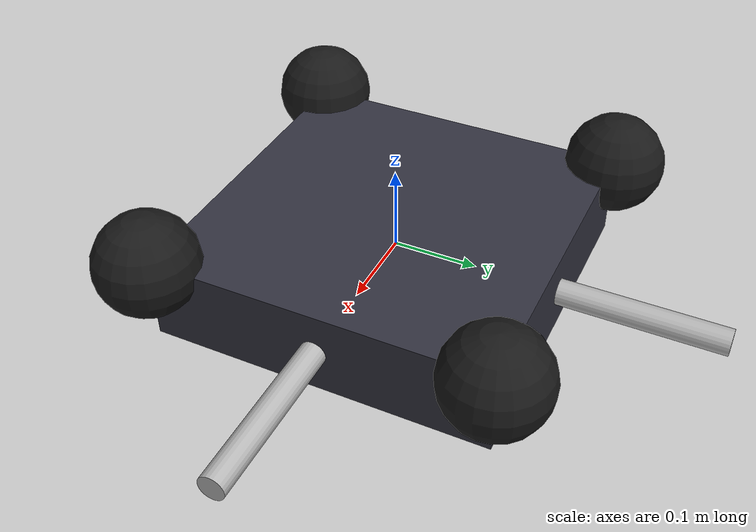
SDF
<?xml version="1.0" ?>
<sdf version="1.10">
  <model name="ucsd_drone">
    <static>false</static>
    <pose>0 0 0 0 0 0</pose>

    <link name="base_link">
      <inertial>
        <mass>1.4</mass>
        <inertia>
          <ixx>0.03</ixx>
          <iyy>0.03</iyy>
          <izz>0.05</izz>
          <ixy>0</ixy>
          <ixz>0</ixz>
          <iyz>0</iyz>
        </inertia>
      </inertial>

      <collision name="body_collision">
        <geometry>
          <box>
            <size>0.4 0.4 0.1</size>
          </box>
        </geometry>
      </collision>

      <visual name="body_visual">
        <geometry>
          <box>
            <size>0.4 0.4 0.1</size>
          </box>
        </geometry>
        <material>
          <ambient>0.15 0.15 0.17 1</ambient>
          <diffuse>0.2 0.2 0.25 1</diffuse>
          <specular>0.3 0.3 0.3 1</specular>
        </material>
      </visual>

      <visual name="arm_front">
        <pose>0.18 0 0 0 1.5708 0</pose>
        <geometry><cylinder><radius>0.015</radius><length>0.42</length></cylinder></geometry>
      </visual>
      <visual name="arm_left">
        <pose>0 0.18 0 1.5708 1.5708 0</pose>
        <geometry><cylinder><radius>0.015</radius><length>0.42</length></cylinder></geometry>
      </visual>

      <visual name="rotor_fl">
        <pose>0.2 0.2 0.05 0 0 0</pose>
        <geometry><sphere><radius>0.06</radius></sphere></geometry>
        <material><ambient>0.05 0.05 0.05 1</ambient><diffuse>0.1 0.1 0.1 1</diffuse></material>
      </visual>
      <visual name="rotor_fr">
        <pose>0.2 -0.2 0.05 0 0 0</pose>
        <geometry><sphere><radius>0.06</radius></sphere></geometry>
        <material><ambient>0.05 0.05 0.05 1</ambient><diffuse>0.1 0.1 0.1 1</diffuse></material>
      </visual>
      <visual name="rotor_rl">
        <pose>-0.2 0.2 0.05 0 0 0</pose>
        <geometry><sphere><radius>0.06</radius></sphere></geometry>
        <material><ambient>0.05 0.05 0.05 1</ambient><diffuse>0.1 0.1 0.1 1</diffuse></material>
      </visual>
      <visual name="rotor_rr">
        <pose>-0.2 -0.2 0.05 0 0 0</pose>
        <geometry><sphere><radius>0.06</radius></sphere></geometry>
        <material><ambient>0.05 0.05 0.05 1</ambient><diffuse>0.1 0.1 0.1 1</diffuse></material>
      </visual>

      <sensor name="drone_cam" type="camera">
        <pose>0 0 -0.06 0 -1.5708 0</pose>
        <update_rate>30</update_rate>
        <always_on>true</always_on>
        <camera>
          <horizontal_fov>1.047</horizontal_fov>
          <image>
            <width>640</width>
            <height>480</height>
            <format>R8G8B8</format>
          </image>
          <clip>
            <near>0.5</near>
            <far>200</far>
          </clip>
        </camera>
        <topic>/drone/camera</topic>
        <visualize>true</visualize>
      </sensor>
    </link>
  </model>
</sdf>
